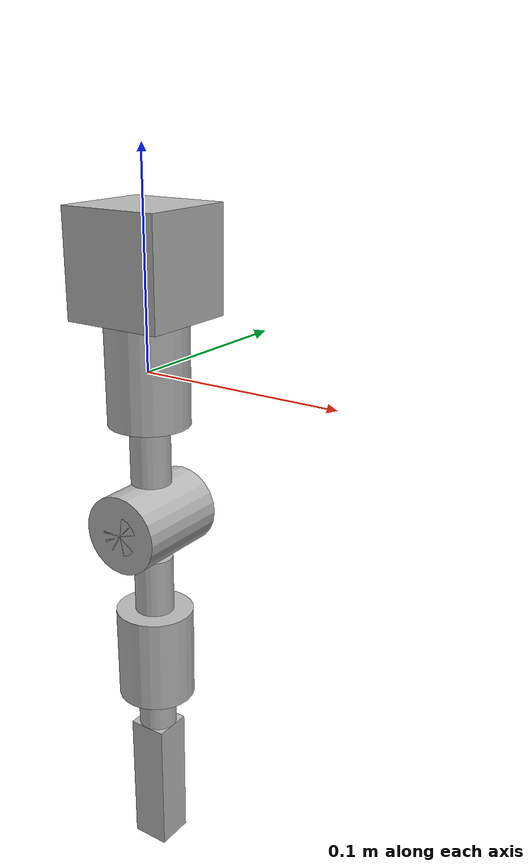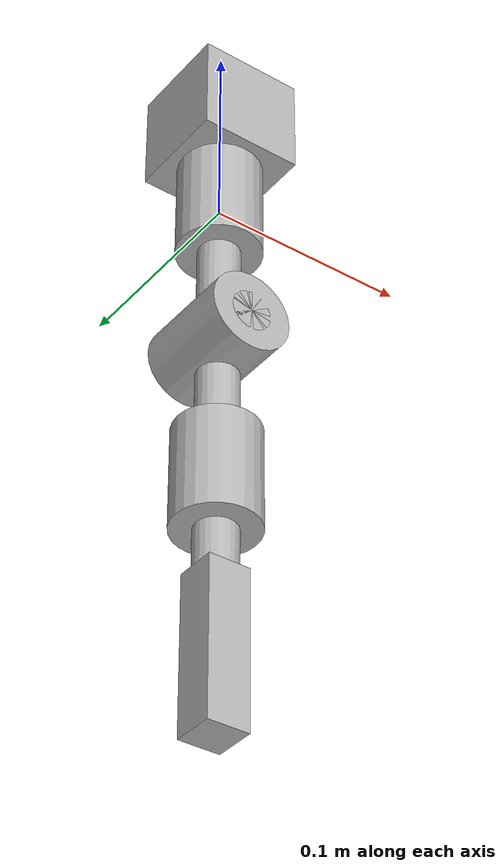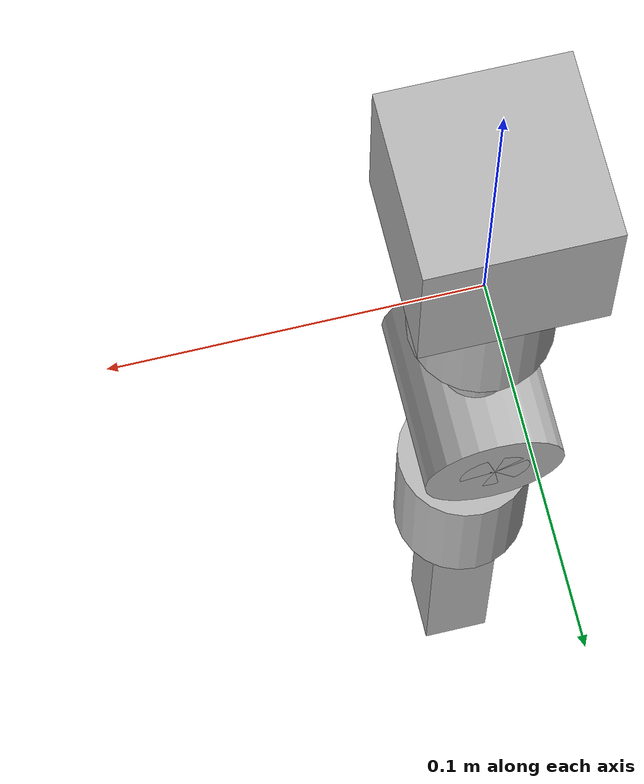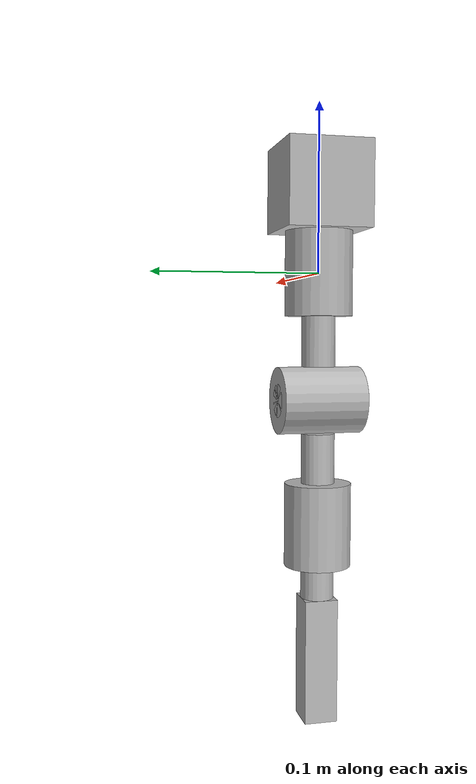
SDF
<?xml version='1.0'?>
<sdf version='1.7'>
  <model name='spherical_wrist'>
    <link name='gantry_base'>
      <pose>0 0 0.025 0 -0 0</pose>
      <gravity>1</gravity>
      <inertial>
        <mass>1</mass>
        <inertia>
          <ixx>0.125</ixx>
          <ixy>0</ixy>
          <ixz>0</ixz>
          <iyy>0.125</iyy>
          <iyz>0</iyz>
          <izz>0.125</izz>
        </inertia>
        <pose>0 0 0 0 -0 0</pose>
      </inertial>
      <visual name='visual'>
        <pose>0 0 0.025 0 -0 0</pose>
        <geometry>
          <box>
            <size>0.05 0.05 0.05</size>
          </box>
        </geometry>
      </visual>
      <collision name='collision'>
        <laser_retro>0</laser_retro>
        <max_contacts>10</max_contacts>
        <pose>0 0 0.025 0 -0 0</pose>
        <geometry>
          <box>
            <size>0.05 0.05 0.05</size>
          </box>
        </geometry>
      </collision>
    </link>
    <link name='servo1'>
      <pose>0 0 0 3.141593 -0 0</pose>
      <gravity>1</gravity>
      <inertial>
        <mass>0.1</mass>
        <inertia>
          <ixx>0.145833</ixx>
          <ixy>0</ixy>
          <ixz>0</ixz>
          <iyy>0.145833</iyy>
          <iyz>0</iyz>
          <izz>0.125</izz>
        </inertia>
        <pose>0 0 0 0 -0 0</pose>
      </inertial>
      <visual name='visual'>
        <pose>0 0 0 0 -0 0</pose>
        <geometry>
          <cylinder>
            <radius>0.02</radius>
            <length>0.05</length>
          </cylinder>
        </geometry>
      </visual>
      <collision name='collision'>
        <laser_retro>0</laser_retro>
        <max_contacts>10</max_contacts>
        <pose>0 0 0 0 -0 0</pose>
        <geometry>
          <cylinder>
            <radius>0.02</radius>
            <length>0.05</length>
          </cylinder>
        </geometry>
      </collision>
    </link>
    <link name='servo2'>
      <pose>0 0 -0.075 -1.5707 -0 0</pose>
      <gravity>1</gravity>
      <inertial>
        <mass>0.1</mass>
        <inertia>
          <ixx>0.145833</ixx>
          <ixy>0</ixy>
          <ixz>0</ixz>
          <iyy>0.145833</iyy>
          <iyz>0</iyz>
          <izz>0.125</izz>
        </inertia>
        <pose>0 0 0 0 -0 0</pose>
      </inertial>
      <visual name='visual'>
        <pose>0 0 0 0 -0 0</pose>
        <geometry>
          <cylinder>
            <radius>0.02</radius>
            <length>0.05</length>
          </cylinder>
        </geometry>
      </visual>
      <collision name='collision'>
        <laser_retro>0</laser_retro>
        <max_contacts>10</max_contacts>
        <pose>0 0 0 0 -0 0</pose>
        <geometry>
          <cylinder>
            <radius>0.02</radius>
            <length>0.05</length>
          </cylinder>
        </geometry>
      </collision>
    </link>
    <link name='servo2_rotor'>
      <pose>0 0 -0.075 -1.5707 -0 0</pose>
      <gravity>1</gravity>
      <inertial>
        <mass>0.1</mass>
        <inertia>
          <ixx>0.145833</ixx>
          <ixy>0</ixy>
          <ixz>0</ixz>
          <iyy>0.145833</iyy>
          <iyz>0</iyz>
          <izz>0.125</izz>
        </inertia>
        <pose>0 0 0 0 -0 0</pose>
      </inertial>
      <visual name='visual'>
        <pose>0 0 0 0 -0 0</pose>
        <geometry>
          <cylinder>
            <radius>0.01</radius>
            <length>0.05</length>
          </cylinder>
        </geometry>
      </visual>
      <collision name='collision'>
        <laser_retro>0</laser_retro>
        <max_contacts>10</max_contacts>
        <pose>0 0 0 0 -0 0</pose>
        <geometry>
          <cylinder>
            <radius>0.01</radius>
            <length>0.05</length>
          </cylinder>
        </geometry>
      </collision>
    </link>
    <link name='servo3'>
      <pose>0 0 -0.15 3.141593 -0 0</pose>
      <gravity>1</gravity>
      <inertial>
        <mass>0.1</mass>
        <inertia>
          <ixx>0.145833</ixx>
          <ixy>0</ixy>
          <ixz>0</ixz>
          <iyy>0.145833</iyy>
          <iyz>0</iyz>
          <izz>0.125</izz>
        </inertia>
        <pose>0 0 0 0 -0 0</pose>
      </inertial>
      <visual name='visual'>
        <pose>0 0 0 0 -0 0</pose>
        <geometry>
          <cylinder>
            <radius>0.02</radius>
            <length>0.05</length>
          </cylinder>
        </geometry>
      </visual>
      <collision name='collision'>
        <laser_retro>0</laser_retro>
        <max_contacts>10</max_contacts>
        <pose>0 0 0 0 -0 0</pose>
        <geometry>
          <cylinder>
            <radius>0.02</radius>
            <length>0.05</length>
          </cylinder>
        </geometry>
      </collision>
    </link>
    <link name='link1'>
      <pose>0 0 -0.04 3.141593 -0 0</pose>
      <gravity>1</gravity>
      <inertial>
        <mass>0.01</mass>
        <inertia>
          <ixx>0.145833</ixx>
          <ixy>0</ixy>
          <ixz>0</ixz>
          <iyy>0.145833</iyy>
          <iyz>0</iyz>
          <izz>0.125</izz>
        </inertia>
        <pose>0 0 0 0 -0 0</pose>
      </inertial>
      <visual name='visual'>
        <pose>0 0 0 0 -0 0</pose>
        <geometry>
          <cylinder>
            <radius>0.01</radius>
            <length>0.03</length>
          </cylinder>
        </geometry>
      </visual>
      <collision name='collision'>
        <laser_retro>0</laser_retro>
        <max_contacts>10</max_contacts>
        <pose>0 0 0 0 -0 0</pose>
        <geometry>
          <cylinder>
            <radius>0.01</radius>
            <length>0.03</length>
          </cylinder>
        </geometry>
      </collision>
    </link>
    <link name='link2'>
      <pose>0 0 -0.11 3.141593 -0 0</pose>
      <gravity>1</gravity>
      <inertial>
        <mass>0.01</mass>
        <inertia>
          <ixx>0.145833</ixx>
          <ixy>0</ixy>
          <ixz>0</ixz>
          <iyy>0.145833</iyy>
          <iyz>0</iyz>
          <izz>0.125</izz>
        </inertia>
        <pose>0 0 0 0 -0 0</pose>
      </inertial>
      <visual name='visual'>
        <pose>0 0 0 0 -0 0</pose>
        <geometry>
          <cylinder>
            <radius>0.01</radius>
            <length>0.03</length>
          </cylinder>
        </geometry>
      </visual>
      <collision name='collision'>
        <laser_retro>0</laser_retro>
        <max_contacts>10</max_contacts>
        <pose>0 0 0 0 -0 0</pose>
        <geometry>
          <cylinder>
            <radius>0.01</radius>
            <length>0.03</length>
          </cylinder>
        </geometry>
      </collision>
    </link>
    <link name='link3'>
      <pose>0 0 -0.19 3.141593 -0 0</pose>
      <gravity>1</gravity>
      <inertial>
        <mass>0.01</mass>
        <inertia>
          <ixx>0.145833</ixx>
          <ixy>0</ixy>
          <ixz>0</ixz>
          <iyy>0.145833</iyy>
          <iyz>0</iyz>
          <izz>0.125</izz>
        </inertia>
        <pose>0 0 0 0 -0 0</pose>
      </inertial>
      <visual name='visual'>
        <pose>0 0 0 0 -0 0</pose>
        <geometry>
          <cylinder>
            <radius>0.01</radius>
            <length>0.03</length>
          </cylinder>
        </geometry>
      </visual>
      <collision name='collision'>
        <laser_retro>0</laser_retro>
        <max_contacts>10</max_contacts>
        <pose>0 0 0 0 -0 0</pose>
        <geometry>
          <cylinder>
            <radius>0.01</radius>
            <length>0.03</length>
          </cylinder>
        </geometry>
      </collision>
    </link>
    <link name='tweezers'>
      <pose>0 0 -0.2325 3.141593 -0 0</pose>
      <gravity>1</gravity>
      <inertial>
        <mass>0.01</mass>
        <inertia>
          <ixx>0.125</ixx>
          <ixy>0</ixy>
          <ixz>0</ixz>
          <iyy>0.125</iyy>
          <iyz>0</iyz>
          <izz>0.125</izz>
        </inertia>
        <pose>0 0 0 0 -0 0</pose>
      </inertial>
      <visual name='visual'>
        <pose>0 0 0 0 -0 0</pose>
        <geometry>
          <box>
            <size>0.02 0.02 0.075</size>
          </box>
        </geometry>
      </visual>
      <collision name='collision'>
        <laser_retro>0</laser_retro>
        <max_contacts>10</max_contacts>
        <pose>0 0 0 0 -0 0</pose>
        <geometry>
          <box>
            <size>0.05 0.02 0.075</size>
          </box>
        </geometry>
      </collision>
    </link>
    <joint name='theta1' type='revolute'>
      <parent>servo1</parent>
      <child>link1</child>
      <axis>
        <xyz>0 0 1</xyz>
        <limit>
          <lower>-3.1415</lower>
          <upper>3.1415</upper>
          <effort>100</effort>
          <velocity>100</velocity>
        </limit>
      </axis>
    </joint>
    <joint name='theta2' type='revolute'>
      <parent>servo2</parent>
      <child>servo2_rotor</child>
      <axis>
        <xyz>0 0 1</xyz>
        <limit>
          <lower>-3.1415</lower>
          <upper>3.1415</upper>
          <effort>100</effort>
          <velocity>100</velocity>
        </limit>
      </axis>
    </joint>
    <joint name='theta3' type='revolute'>
      <parent>servo3</parent>
      <child>link3</child>
      <axis>
        <xyz>0 0 1</xyz>
        <limit>
          <lower>-3.1415</lower>
          <upper>3.1415</upper>
          <effort>100</effort>
          <velocity>100</velocity>
        </limit>
      </axis>
    </joint>
    <joint name='servo2_joint' type='fixed'>
      <parent>link1</parent>
      <child>servo2</child>
    </joint>
    <joint name='servo3_joint' type='fixed'>
      <parent>link2</parent>
      <child>servo3</child>
    </joint>
    <joint name='servo2_rotor_joint' type='fixed'>
      <parent>servo2_rotor</parent>
      <child>link2</child>
    </joint>
    <joint name='tweezer_joint' type='fixed'>
      <parent>link3</parent>
      <child>tweezers</child>
    </joint>
    <joint name='base_joint' type='fixed'>
      <parent>gantry_base</parent>
      <child>servo1</child>
    </joint>
  </model>
</sdf>
